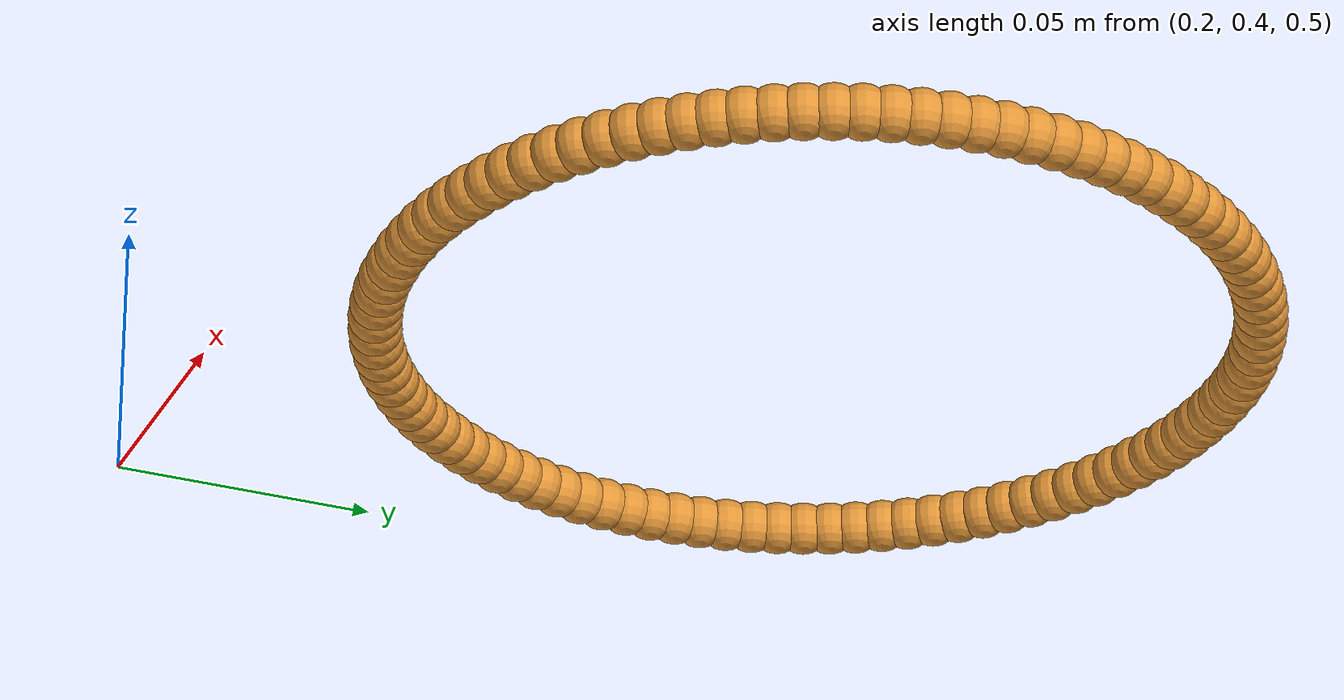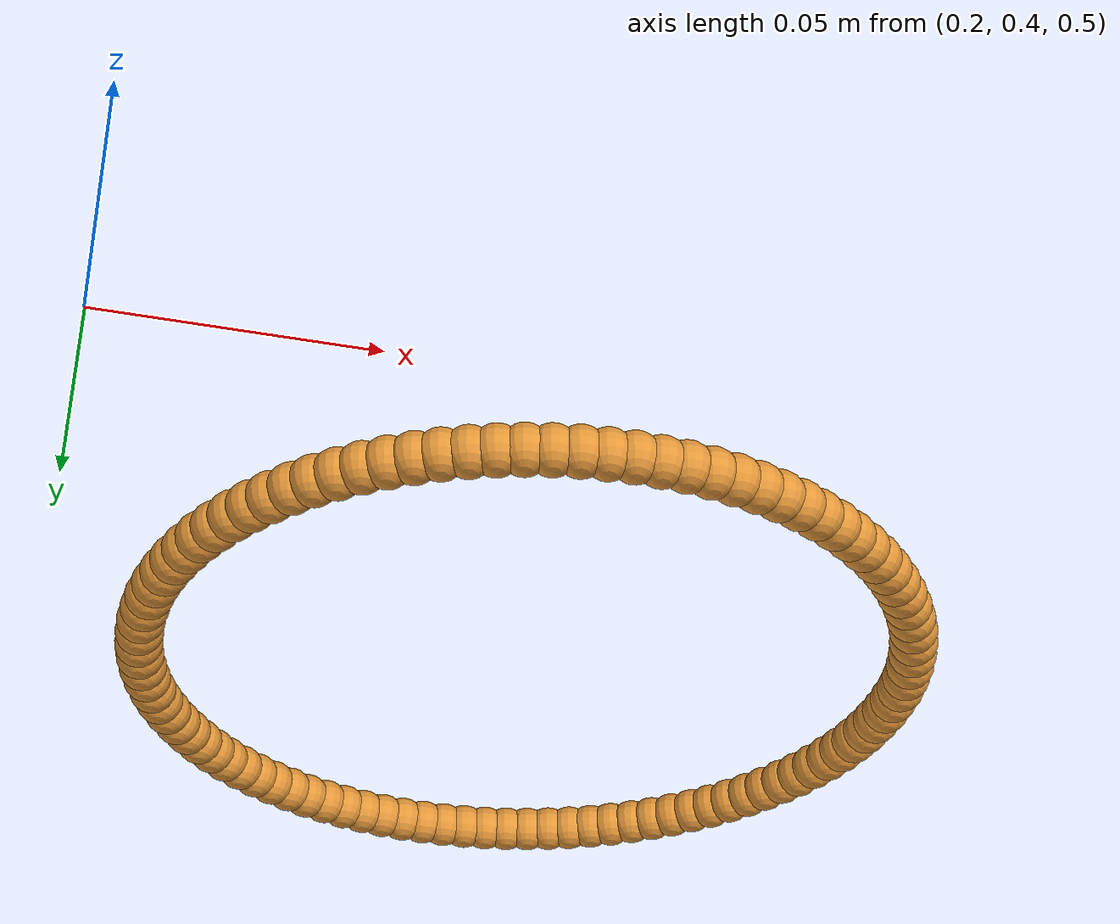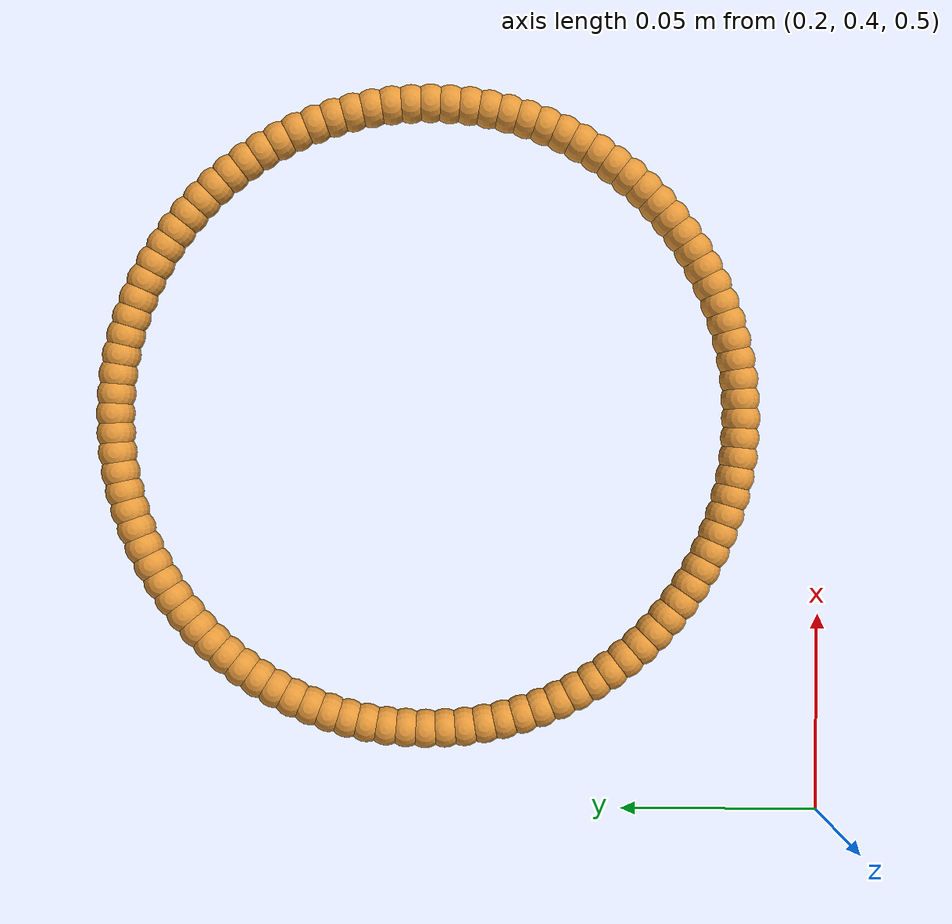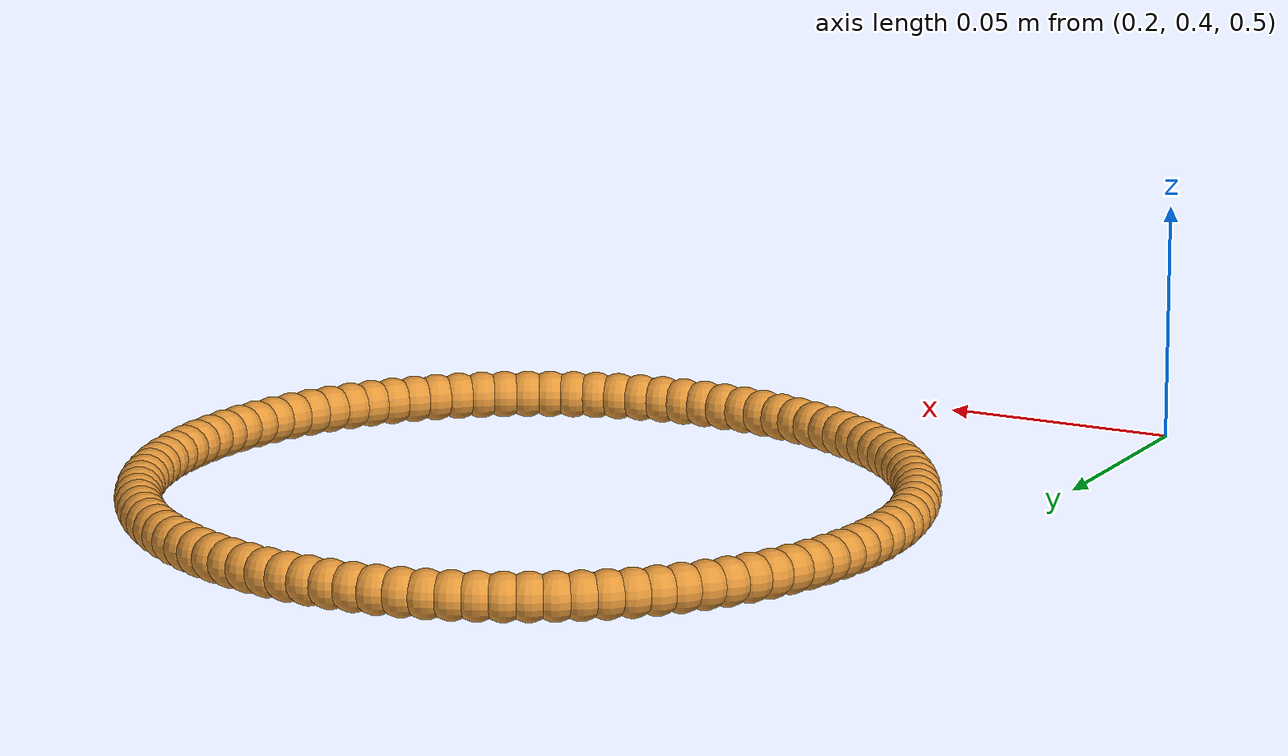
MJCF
<mujoco>
  <compiler angle="radian"/>
  <worldbody>

    <!-- 空心圆环主体 -->
    <body name="circle2" pos="0.30 0.50 0.50">
      <freejoint/>
      <inertial pos="0 0 0" mass="0.1" diaginertia="0.001 0.001 0.001"/>

      <body name="circle2_center" pos="0 0 0">

      <!-- 第0个球体 -->
      <body name="sphere_0" pos="0.0800 0.0000 0">
        <geom type="sphere" size="0.005" rgba="0.89 0.59 0.22 1"/>
      </body>

      <!-- 第1个球体 -->
      <body name="sphere_1" pos="0.0798 0.0050 0">
        <geom type="sphere" size="0.005" rgba="0.89 0.59 0.22 1"/>
      </body>

      <!-- 第2个球体 -->
      <body name="sphere_2" pos="0.0794 0.0100 0">
        <geom type="sphere" size="0.005" rgba="0.89 0.59 0.22 1"/>
      </body>

      <!-- 第3个球体 -->
      <body name="sphere_3" pos="0.0786 0.0150 0">
        <geom type="sphere" size="0.005" rgba="0.89 0.59 0.22 1"/>
      </body>

      <!-- 第4个球体 -->
      <body name="sphere_4" pos="0.0775 0.0199 0">
        <geom type="sphere" size="0.005" rgba="0.89 0.59 0.22 1"/>
      </body>

      <!-- 第5个球体 -->
      <body name="sphere_5" pos="0.0761 0.0247 0">
        <geom type="sphere" size="0.005" rgba="0.89 0.59 0.22 1"/>
      </body>

      <!-- 第6个球体 -->
      <body name="sphere_6" pos="0.0744 0.0294 0">
        <geom type="sphere" size="0.005" rgba="0.89 0.59 0.22 1"/>
      </body>

      <!-- 第7个球体 -->
      <body name="sphere_7" pos="0.0724 0.0341 0">
        <geom type="sphere" size="0.005" rgba="0.89 0.59 0.22 1"/>
      </body>

      <!-- 第8个球体 -->
      <body name="sphere_8" pos="0.0701 0.0385 0">
        <geom type="sphere" size="0.005" rgba="0.89 0.59 0.22 1"/>
      </body>

      <!-- 第9个球体 -->
      <body name="sphere_9" pos="0.0675 0.0429 0">
        <geom type="sphere" size="0.005" rgba="0.89 0.59 0.22 1"/>
      </body>

      <!-- 第10个球体 -->
      <body name="sphere_10" pos="0.0647 0.0470 0">
        <geom type="sphere" size="0.005" rgba="0.89 0.59 0.22 1"/>
      </body>

      <!-- 第11个球体 -->
      <body name="sphere_11" pos="0.0616 0.0510 0">
        <geom type="sphere" size="0.005" rgba="0.89 0.59 0.22 1"/>
      </body>

      <!-- 第12个球体 -->
      <body name="sphere_12" pos="0.0583 0.0548 0">
        <geom type="sphere" size="0.005" rgba="0.89 0.59 0.22 1"/>
      </body>

      <!-- 第13个球体 -->
      <body name="sphere_13" pos="0.0548 0.0583 0">
        <geom type="sphere" size="0.005" rgba="0.89 0.59 0.22 1"/>
      </body>

      <!-- 第14个球体 -->
      <body name="sphere_14" pos="0.0510 0.0616 0">
        <geom type="sphere" size="0.005" rgba="0.89 0.59 0.22 1"/>
      </body>

      <!-- 第15个球体 -->
      <body name="sphere_15" pos="0.0470 0.0647 0">
        <geom type="sphere" size="0.005" rgba="0.89 0.59 0.22 1"/>
      </body>

      <!-- 第16个球体 -->
      <body name="sphere_16" pos="0.0429 0.0675 0">
        <geom type="sphere" size="0.005" rgba="0.89 0.59 0.22 1"/>
      </body>

      <!-- 第17个球体 -->
      <body name="sphere_17" pos="0.0385 0.0701 0">
        <geom type="sphere" size="0.005" rgba="0.89 0.59 0.22 1"/>
      </body>

      <!-- 第18个球体 -->
      <body name="sphere_18" pos="0.0341 0.0724 0">
        <geom type="sphere" size="0.005" rgba="0.89 0.59 0.22 1"/>
      </body>

      <!-- 第19个球体 -->
      <body name="sphere_19" pos="0.0294 0.0744 0">
        <geom type="sphere" size="0.005" rgba="0.89 0.59 0.22 1"/>
      </body>

      <!-- 第20个球体 -->
      <body name="sphere_20" pos="0.0247 0.0761 0">
        <geom type="sphere" size="0.005" rgba="0.89 0.59 0.22 1"/>
      </body>

      <!-- 第21个球体 -->
      <body name="sphere_21" pos="0.0199 0.0775 0">
        <geom type="sphere" size="0.005" rgba="0.89 0.59 0.22 1"/>
      </body>

      <!-- 第22个球体 -->
      <body name="sphere_22" pos="0.0150 0.0786 0">
        <geom type="sphere" size="0.005" rgba="0.89 0.59 0.22 1"/>
      </body>

      <!-- 第23个球体 -->
      <body name="sphere_23" pos="0.0100 0.0794 0">
        <geom type="sphere" size="0.005" rgba="0.89 0.59 0.22 1"/>
      </body>

      <!-- 第24个球体 -->
      <body name="sphere_24" pos="0.0050 0.0798 0">
        <geom type="sphere" size="0.005" rgba="0.89 0.59 0.22 1"/>
      </body>

      <!-- 第25个球体 -->
      <body name="sphere_25" pos="0.0000 0.0800 0">
        <geom type="sphere" size="0.005" rgba="0.89 0.59 0.22 1"/>
      </body>

      <!-- 第26个球体 -->
      <body name="sphere_26" pos="-0.0050 0.0798 0">
        <geom type="sphere" size="0.005" rgba="0.89 0.59 0.22 1"/>
      </body>

      <!-- 第27个球体 -->
      <body name="sphere_27" pos="-0.0100 0.0794 0">
        <geom type="sphere" size="0.005" rgba="0.89 0.59 0.22 1"/>
      </body>

      <!-- 第28个球体 -->
      <body name="sphere_28" pos="-0.0150 0.0786 0">
        <geom type="sphere" size="0.005" rgba="0.89 0.59 0.22 1"/>
      </body>

      <!-- 第29个球体 -->
      <body name="sphere_29" pos="-0.0199 0.0775 0">
        <geom type="sphere" size="0.005" rgba="0.89 0.59 0.22 1"/>
      </body>

      <!-- 第30个球体 -->
      <body name="sphere_30" pos="-0.0247 0.0761 0">
        <geom type="sphere" size="0.005" rgba="0.89 0.59 0.22 1"/>
      </body>

      <!-- 第31个球体 -->
      <body name="sphere_31" pos="-0.0294 0.0744 0">
        <geom type="sphere" size="0.005" rgba="0.89 0.59 0.22 1"/>
      </body>

      <!-- 第32个球体 -->
      <body name="sphere_32" pos="-0.0341 0.0724 0">
        <geom type="sphere" size="0.005" rgba="0.89 0.59 0.22 1"/>
      </body>

      <!-- 第33个球体 -->
      <body name="sphere_33" pos="-0.0385 0.0701 0">
        <geom type="sphere" size="0.005" rgba="0.89 0.59 0.22 1"/>
      </body>

      <!-- 第34个球体 -->
      <body name="sphere_34" pos="-0.0429 0.0675 0">
        <geom type="sphere" size="0.005" rgba="0.89 0.59 0.22 1"/>
      </body>

      <!-- 第35个球体 -->
      <body name="sphere_35" pos="-0.0470 0.0647 0">
        <geom type="sphere" size="0.005" rgba="0.89 0.59 0.22 1"/>
      </body>

      <!-- 第36个球体 -->
      <body name="sphere_36" pos="-0.0510 0.0616 0">
        <geom type="sphere" size="0.005" rgba="0.89 0.59 0.22 1"/>
      </body>

      <!-- 第37个球体 -->
      <body name="sphere_37" pos="-0.0548 0.0583 0">
        <geom type="sphere" size="0.005" rgba="0.89 0.59 0.22 1"/>
      </body>

      <!-- 第38个球体 -->
      <body name="sphere_38" pos="-0.0583 0.0548 0">
        <geom type="sphere" size="0.005" rgba="0.89 0.59 0.22 1"/>
      </body>

      <!-- 第39个球体 -->
      <body name="sphere_39" pos="-0.0616 0.0510 0">
        <geom type="sphere" size="0.005" rgba="0.89 0.59 0.22 1"/>
      </body>

      <!-- 第40个球体 -->
      <body name="sphere_40" pos="-0.0647 0.0470 0">
        <geom type="sphere" size="0.005" rgba="0.89 0.59 0.22 1"/>
      </body>

      <!-- 第41个球体 -->
      <body name="sphere_41" pos="-0.0675 0.0429 0">
        <geom type="sphere" size="0.005" rgba="0.89 0.59 0.22 1"/>
      </body>

      <!-- 第42个球体 -->
      <body name="sphere_42" pos="-0.0701 0.0385 0">
        <geom type="sphere" size="0.005" rgba="0.89 0.59 0.22 1"/>
      </body>

      <!-- 第43个球体 -->
      <body name="sphere_43" pos="-0.0724 0.0341 0">
        <geom type="sphere" size="0.005" rgba="0.89 0.59 0.22 1"/>
      </body>

      <!-- 第44个球体 -->
      <body name="sphere_44" pos="-0.0744 0.0294 0">
        <geom type="sphere" size="0.005" rgba="0.89 0.59 0.22 1"/>
      </body>

      <!-- 第45个球体 -->
      <body name="sphere_45" pos="-0.0761 0.0247 0">
        <geom type="sphere" size="0.005" rgba="0.89 0.59 0.22 1"/>
      </body>

      <!-- 第46个球体 -->
      <body name="sphere_46" pos="-0.0775 0.0199 0">
        <geom type="sphere" size="0.005" rgba="0.89 0.59 0.22 1"/>
      </body>

      <!-- 第47个球体 -->
      <body name="sphere_47" pos="-0.0786 0.0150 0">
        <geom type="sphere" size="0.005" rgba="0.89 0.59 0.22 1"/>
      </body>

      <!-- 第48个球体 -->
      <body name="sphere_48" pos="-0.0794 0.0100 0">
        <geom type="sphere" size="0.005" rgba="0.89 0.59 0.22 1"/>
      </body>

      <!-- 第49个球体 -->
      <body name="sphere_49" pos="-0.0798 0.0050 0">
        <geom type="sphere" size="0.005" rgba="0.89 0.59 0.22 1"/>
      </body>

      <!-- 第50个球体 -->
      <body name="sphere_50" pos="-0.0800 0.0000 0">
        <geom type="sphere" size="0.005" rgba="0.89 0.59 0.22 1"/>
      </body>

      <!-- 第51个球体 -->
      <body name="sphere_51" pos="-0.0798 -0.0050 0">
        <geom type="sphere" size="0.005" rgba="0.89 0.59 0.22 1"/>
      </body>

      <!-- 第52个球体 -->
      <body name="sphere_52" pos="-0.0794 -0.0100 0">
        <geom type="sphere" size="0.005" rgba="0.89 0.59 0.22 1"/>
      </body>

      <!-- 第53个球体 -->
      <body name="sphere_53" pos="-0.0786 -0.0150 0">
        <geom type="sphere" size="0.005" rgba="0.89 0.59 0.22 1"/>
      </body>

      <!-- 第54个球体 -->
      <body name="sphere_54" pos="-0.0775 -0.0199 0">
        <geom type="sphere" size="0.005" rgba="0.89 0.59 0.22 1"/>
      </body>

      <!-- 第55个球体 -->
      <body name="sphere_55" pos="-0.0761 -0.0247 0">
        <geom type="sphere" size="0.005" rgba="0.89 0.59 0.22 1"/>
      </body>

      <!-- 第56个球体 -->
      <body name="sphere_56" pos="-0.0744 -0.0294 0">
        <geom type="sphere" size="0.005" rgba="0.89 0.59 0.22 1"/>
      </body>

      <!-- 第57个球体 -->
      <body name="sphere_57" pos="-0.0724 -0.0341 0">
        <geom type="sphere" size="0.005" rgba="0.89 0.59 0.22 1"/>
      </body>

      <!-- 第58个球体 -->
      <body name="sphere_58" pos="-0.0701 -0.0385 0">
        <geom type="sphere" size="0.005" rgba="0.89 0.59 0.22 1"/>
      </body>

      <!-- 第59个球体 -->
      <body name="sphere_59" pos="-0.0675 -0.0429 0">
        <geom type="sphere" size="0.005" rgba="0.89 0.59 0.22 1"/>
      </body>

      <!-- 第60个球体 -->
      <body name="sphere_60" pos="-0.0647 -0.0470 0">
        <geom type="sphere" size="0.005" rgba="0.89 0.59 0.22 1"/>
      </body>

      <!-- 第61个球体 -->
      <body name="sphere_61" pos="-0.0616 -0.0510 0">
        <geom type="sphere" size="0.005" rgba="0.89 0.59 0.22 1"/>
      </body>

      <!-- 第62个球体 -->
      <body name="sphere_62" pos="-0.0583 -0.0548 0">
        <geom type="sphere" size="0.005" rgba="0.89 0.59 0.22 1"/>
      </body>

      <!-- 第63个球体 -->
      <body name="sphere_63" pos="-0.0548 -0.0583 0">
        <geom type="sphere" size="0.005" rgba="0.89 0.59 0.22 1"/>
      </body>

      <!-- 第64个球体 -->
      <body name="sphere_64" pos="-0.0510 -0.0616 0">
        <geom type="sphere" size="0.005" rgba="0.89 0.59 0.22 1"/>
      </body>

      <!-- 第65个球体 -->
      <body name="sphere_65" pos="-0.0470 -0.0647 0">
        <geom type="sphere" size="0.005" rgba="0.89 0.59 0.22 1"/>
      </body>

      <!-- 第66个球体 -->
      <body name="sphere_66" pos="-0.0429 -0.0675 0">
        <geom type="sphere" size="0.005" rgba="0.89 0.59 0.22 1"/>
      </body>

      <!-- 第67个球体 -->
      <body name="sphere_67" pos="-0.0385 -0.0701 0">
        <geom type="sphere" size="0.005" rgba="0.89 0.59 0.22 1"/>
      </body>

      <!-- 第68个球体 -->
      <body name="sphere_68" pos="-0.0341 -0.0724 0">
        <geom type="sphere" size="0.005" rgba="0.89 0.59 0.22 1"/>
      </body>

      <!-- 第69个球体 -->
      <body name="sphere_69" pos="-0.0294 -0.0744 0">
        <geom type="sphere" size="0.005" rgba="0.89 0.59 0.22 1"/>
      </body>

      <!-- 第70个球体 -->
      <body name="sphere_70" pos="-0.0247 -0.0761 0">
        <geom type="sphere" size="0.005" rgba="0.89 0.59 0.22 1"/>
      </body>

      <!-- 第71个球体 -->
      <body name="sphere_71" pos="-0.0199 -0.0775 0">
        <geom type="sphere" size="0.005" rgba="0.89 0.59 0.22 1"/>
      </body>

      <!-- 第72个球体 -->
      <body name="sphere_72" pos="-0.0150 -0.0786 0">
        <geom type="sphere" size="0.005" rgba="0.89 0.59 0.22 1"/>
      </body>

      <!-- 第73个球体 -->
      <body name="sphere_73" pos="-0.0100 -0.0794 0">
        <geom type="sphere" size="0.005" rgba="0.89 0.59 0.22 1"/>
      </body>

      <!-- 第74个球体 -->
      <body name="sphere_74" pos="-0.0050 -0.0798 0">
        <geom type="sphere" size="0.005" rgba="0.89 0.59 0.22 1"/>
      </body>

      <!-- 第75个球体 -->
      <body name="sphere_75" pos="-0.0000 -0.0800 0">
        <geom type="sphere" size="0.005" rgba="0.89 0.59 0.22 1"/>
      </body>

      <!-- 第76个球体 -->
      <body name="sphere_76" pos="0.0050 -0.0798 0">
        <geom type="sphere" size="0.005" rgba="0.89 0.59 0.22 1"/>
      </body>

      <!-- 第77个球体 -->
      <body name="sphere_77" pos="0.0100 -0.0794 0">
        <geom type="sphere" size="0.005" rgba="0.89 0.59 0.22 1"/>
      </body>

      <!-- 第78个球体 -->
      <body name="sphere_78" pos="0.0150 -0.0786 0">
        <geom type="sphere" size="0.005" rgba="0.89 0.59 0.22 1"/>
      </body>

      <!-- 第79个球体 -->
      <body name="sphere_79" pos="0.0199 -0.0775 0">
        <geom type="sphere" size="0.005" rgba="0.89 0.59 0.22 1"/>
      </body>

      <!-- 第80个球体 -->
      <body name="sphere_80" pos="0.0247 -0.0761 0">
        <geom type="sphere" size="0.005" rgba="0.89 0.59 0.22 1"/>
      </body>

      <!-- 第81个球体 -->
      <body name="sphere_81" pos="0.0294 -0.0744 0">
        <geom type="sphere" size="0.005" rgba="0.89 0.59 0.22 1"/>
      </body>

      <!-- 第82个球体 -->
      <body name="sphere_82" pos="0.0341 -0.0724 0">
        <geom type="sphere" size="0.005" rgba="0.89 0.59 0.22 1"/>
      </body>

      <!-- 第83个球体 -->
      <body name="sphere_83" pos="0.0385 -0.0701 0">
        <geom type="sphere" size="0.005" rgba="0.89 0.59 0.22 1"/>
      </body>

      <!-- 第84个球体 -->
      <body name="sphere_84" pos="0.0429 -0.0675 0">
        <geom type="sphere" size="0.005" rgba="0.89 0.59 0.22 1"/>
      </body>

      <!-- 第85个球体 -->
      <body name="sphere_85" pos="0.0470 -0.0647 0">
        <geom type="sphere" size="0.005" rgba="0.89 0.59 0.22 1"/>
      </body>

      <!-- 第86个球体 -->
      <body name="sphere_86" pos="0.0510 -0.0616 0">
        <geom type="sphere" size="0.005" rgba="0.89 0.59 0.22 1"/>
      </body>

      <!-- 第87个球体 -->
      <body name="sphere_87" pos="0.0548 -0.0583 0">
        <geom type="sphere" size="0.005" rgba="0.89 0.59 0.22 1"/>
      </body>

      <!-- 第88个球体 -->
      <body name="sphere_88" pos="0.0583 -0.0548 0">
        <geom type="sphere" size="0.005" rgba="0.89 0.59 0.22 1"/>
      </body>

      <!-- 第89个球体 -->
      <body name="sphere_89" pos="0.0616 -0.0510 0">
        <geom type="sphere" size="0.005" rgba="0.89 0.59 0.22 1"/>
      </body>

      <!-- 第90个球体 -->
      <body name="sphere_90" pos="0.0647 -0.0470 0">
        <geom type="sphere" size="0.005" rgba="0.89 0.59 0.22 1"/>
      </body>

      <!-- 第91个球体 -->
      <body name="sphere_91" pos="0.0675 -0.0429 0">
        <geom type="sphere" size="0.005" rgba="0.89 0.59 0.22 1"/>
      </body>

      <!-- 第92个球体 -->
      <body name="sphere_92" pos="0.0701 -0.0385 0">
        <geom type="sphere" size="0.005" rgba="0.89 0.59 0.22 1"/>
      </body>

      <!-- 第93个球体 -->
      <body name="sphere_93" pos="0.0724 -0.0341 0">
        <geom type="sphere" size="0.005" rgba="0.89 0.59 0.22 1"/>
      </body>

      <!-- 第94个球体 -->
      <body name="sphere_94" pos="0.0744 -0.0294 0">
        <geom type="sphere" size="0.005" rgba="0.89 0.59 0.22 1"/>
      </body>

      <!-- 第95个球体 -->
      <body name="sphere_95" pos="0.0761 -0.0247 0">
        <geom type="sphere" size="0.005" rgba="0.89 0.59 0.22 1"/>
      </body>

      <!-- 第96个球体 -->
      <body name="sphere_96" pos="0.0775 -0.0199 0">
        <geom type="sphere" size="0.005" rgba="0.89 0.59 0.22 1"/>
      </body>

      <!-- 第97个球体 -->
      <body name="sphere_97" pos="0.0786 -0.0150 0">
        <geom type="sphere" size="0.005" rgba="0.89 0.59 0.22 1"/>
      </body>

      <!-- 第98个球体 -->
      <body name="sphere_98" pos="0.0794 -0.0100 0">
        <geom type="sphere" size="0.005" rgba="0.89 0.59 0.22 1"/>
      </body>

      <!-- 第99个球体 -->
      <body name="sphere_99" pos="0.0798 -0.0050 0">
        <geom type="sphere" size="0.005" rgba="0.89 0.59 0.22 1"/>
      </body>

      </body>
    </body>

  </worldbody>
</mujoco>
